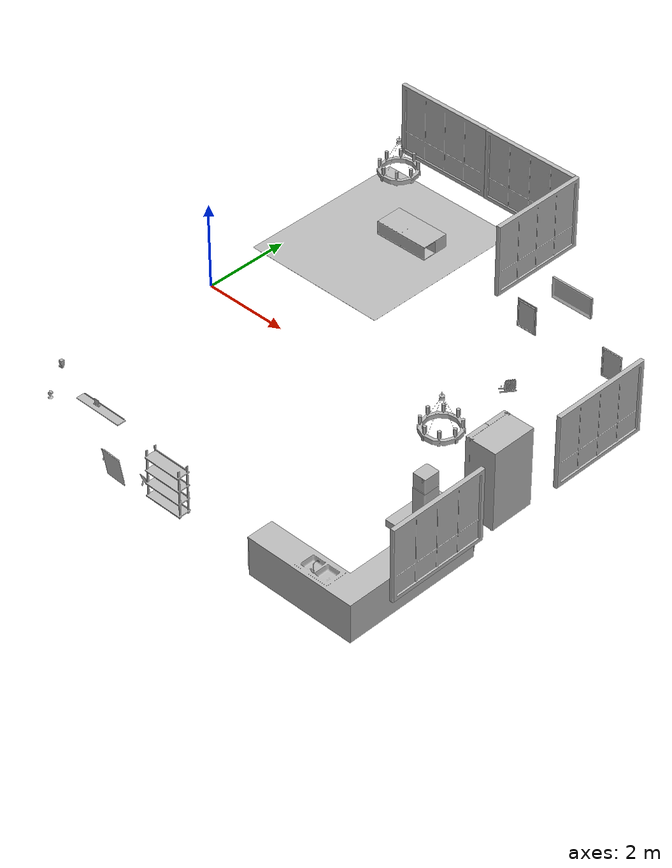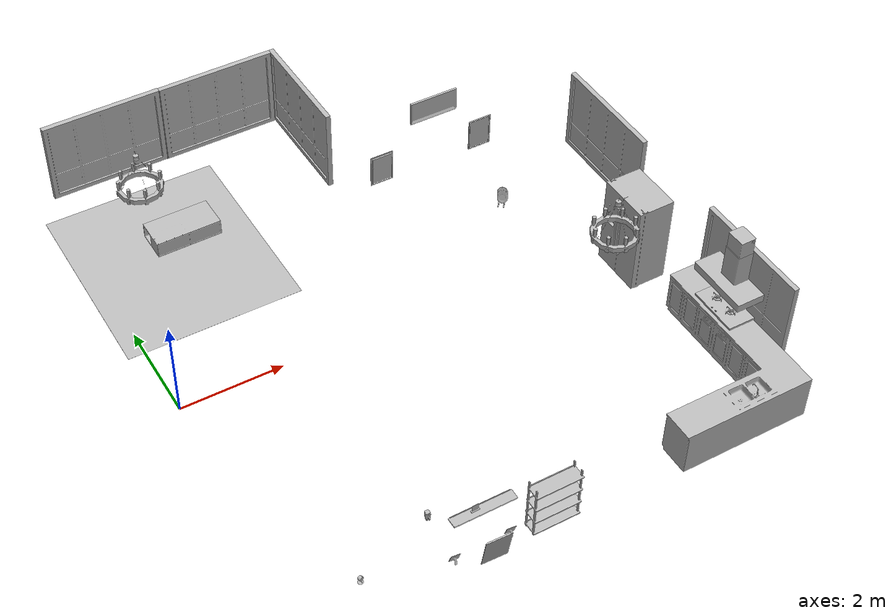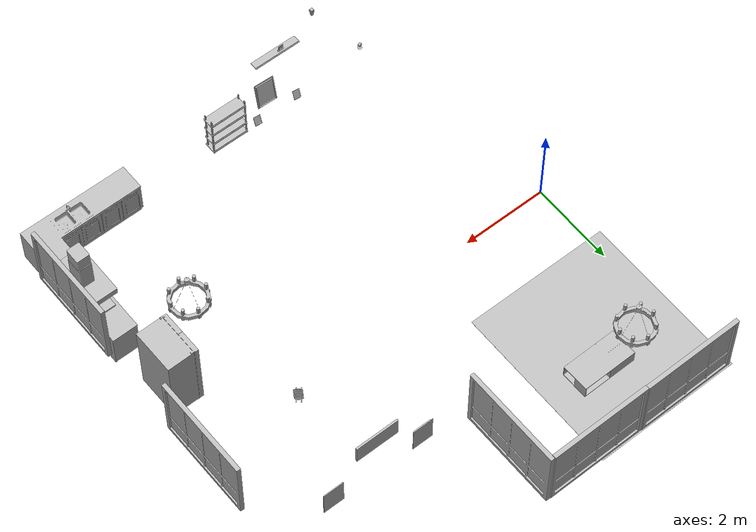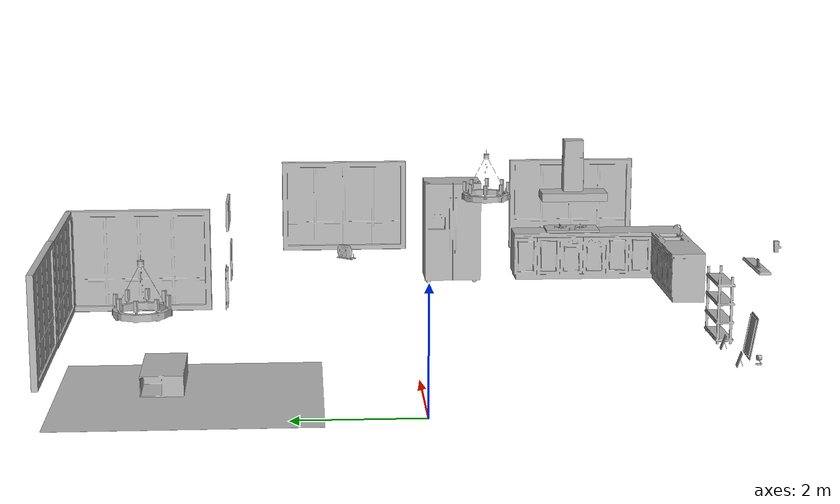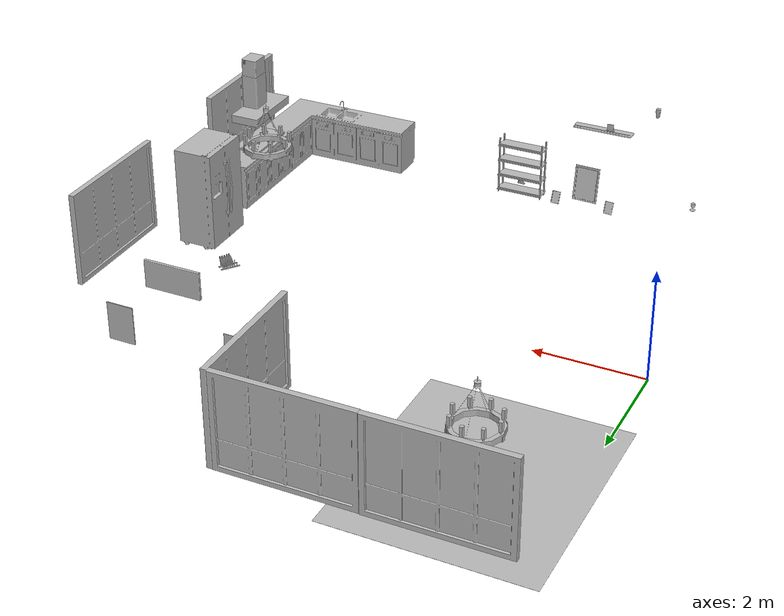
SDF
<sdf version="1.7">
 <world name="default">
  <model name="Board_01_001">
   <static>1</static>
   <frame name="aws_robomaker_residential_Board_01::__model__" attached_to="aws_robomaker_residential_Board_01::link">
    <pose relative_to="__model__">0 0 0 0 -0 0</pose>
   </frame>
   <link name="aws_robomaker_residential_Board_01::link">
    <inertial><mass>1</mass></inertial>
    <collision name="collision">
     <geometry>
      <mesh>
       <uri>model://aws_robomaker_residential_Board_01/meshes/aws_Board_01_collision.DAE</uri>
       <scale>1 1 1</scale>
      </mesh>
     </geometry>
    </collision>
    <visual name="visual">
     <geometry>
      <mesh><uri>model://aws_robomaker_residential_Board_01/meshes/aws_Board_01_visual.DAE</uri></mesh>
     </geometry>
     <meta><layer>2</layer></meta>
    </visual>
    <pose relative_to="aws_robomaker_residential_Board_01::__model__">0 0 0 0 -0 0</pose>
   </link>
   <static>1</static>
   <pose>2.77907 -5.3927 1.53817 0 -0 0</pose>
  </model>
  <model name="Chandelier_01_001">
   <static>1</static>
   <frame name="aws_robomaker_residential_Chandelier_01::__model__" attached_to="aws_robomaker_residential_Chandelier_01::link">
    <pose relative_to="__model__">0 0 0 0 -0 0</pose>
   </frame>
   <link name="aws_robomaker_residential_Chandelier_01::link">
    <inertial><mass>1</mass></inertial>
    <collision name="collision">
     <geometry>
      <mesh>
       <uri>model://aws_robomaker_residential_Chandelier_01/meshes/aws_Chandelier_01_collision.DAE</uri>
       <scale>1 1 1</scale>
      </mesh>
     </geometry>
    </collision>
    <visual name="visual">
     <geometry>
      <mesh><uri>model://aws_robomaker_residential_Chandelier_01/meshes/aws_Chandelier_01_visual.DAE</uri></mesh>
     </geometry>
     <meta><layer>2</layer></meta>
    </visual>
    <pose relative_to="aws_robomaker_residential_Chandelier_01::__model__">0 0 0 0 -0 0</pose>
   </link>
   <static>1</static>
   <pose>1.22106 4.15574 1.295 0 -0 0</pose>
  </model>
  <model name="Chandelier_01_003">
   <static>1</static>
   <frame name="aws_robomaker_residential_Chandelier_01::__model__" attached_to="aws_robomaker_residential_Chandelier_01::link">
    <pose relative_to="__model__">0 0 0 0 -0 0</pose>
   </frame>
   <link name="aws_robomaker_residential_Chandelier_01::link">
    <inertial><mass>1</mass></inertial>
    <collision name="collision">
     <geometry>
      <mesh>
       <uri>model://aws_robomaker_residential_Chandelier_01/meshes/aws_Chandelier_01_collision.DAE</uri>
       <scale>1 1 1</scale>
      </mesh>
     </geometry>
    </collision>
    <visual name="visual">
     <geometry>
      <mesh><uri>model://aws_robomaker_residential_Chandelier_01/meshes/aws_Chandelier_01_visual.DAE</uri></mesh>
     </geometry>
     <meta><layer>2</layer></meta>
    </visual>
    <pose relative_to="aws_robomaker_residential_Chandelier_01::__model__">0 0 0 0 -0 0</pose>
   </link>
   <static>1</static>
   <pose>7.82406 -1.59 1.751 0 -0 0</pose>
  </model>
  <model name="Carpet_01_001">
   <static>1</static>
   <frame name="aws_robomaker_residential_Carpet_01::__model__" attached_to="aws_robomaker_residential_Carpet_01::link">
    <pose relative_to="__model__">0 0 0 0 -0 0</pose>
   </frame>
   <link name="aws_robomaker_residential_Carpet_01::link">
    <inertial><mass>8.1</mass></inertial>
    <collision name="collision">
     <geometry>
      <mesh>
       <uri>model://aws_robomaker_residential_Carpet_01/meshes/aws_Carpet_01_collision.DAE</uri>
       <scale>1 1 0.95</scale>
      </mesh>
     </geometry>
     <surface><friction><ode><mu>100</mu><mu2>50</mu2></ode></friction></surface>
     <pose>0 0 -0.01 0 -0 0</pose>
    </collision>
    <visual name="visual">
     <geometry>
      <mesh><uri>model://aws_robomaker_residential_Carpet_01/meshes/aws_Carpet_01_visual.DAE</uri></mesh>
     </geometry>
     <meta><layer>1</layer></meta>
    </visual>
    <pose relative_to="aws_robomaker_residential_Carpet_01::__model__">0 0 0 0 -0 0</pose>
   </link>
   <static>1</static>
   <pose>1.40733 3.50225 0.001106 0 -0 0</pose>
  </model>
  <model name="SecurityCamera_01_001">
   <static>1</static>
   <frame name="aws_robomaker_residential_SecurityCamera_01::__model__" attached_to="aws_robomaker_residential_SecurityCamera_01::link">
    <pose relative_to="__model__">0 0 0 0 -0 0</pose>
   </frame>
   <link name="aws_robomaker_residential_SecurityCamera_01::link">
    <inertial>
     <mass>1</mass>
     <inertia>
      <ixx>18.2222</ixx>
      <ixy>0</ixy>
      <ixz>0</ixz>
      <iyy>18.2222</iyy>
      <iyz>0</iyz>
      <izz>0.0018767</izz>
     </inertia>
    </inertial>
    <collision name="collision">
     <geometry>
      <mesh>
       <uri>model://aws_robomaker_residential_SecurityCamera_01/meshes/aws_SecurityCamera_01_collision.DAE</uri>
       <scale>1 1 1</scale>
      </mesh>
     </geometry>
    </collision>
    <visual name="visual">
     <geometry>
      <mesh>
       <uri>model://aws_robomaker_residential_SecurityCamera_01/meshes/aws_SecurityCamera_01_visual.DAE</uri>
      </mesh>
     </geometry>
     <meta><layer>2</layer></meta>
    </visual>
    <pose relative_to="aws_robomaker_residential_SecurityCamera_01::__model__">0 0 0 0 -0 0</pose>
   </link>
   <pose>0.842134 -4.99629 0.495067 0 0 -2.84104</pose>
  </model>
  <model name="CoffeeTable_01_001">
   <static>1</static>
   <frame name="aws_robomaker_residential_CoffeeTable_01::__model__" attached_to="aws_robomaker_residential_CoffeeTable_01::link">
    <pose relative_to="__model__">0 0 0 0 -0 0</pose>
   </frame>
   <link name="aws_robomaker_residential_CoffeeTable_01::link">
    <inertial>
     <mass>21.7</mass>
     <inertia><ixx>0.81375</ixx><ixy>0</ixy><ixz>0</ixz><iyy>2.76675</iyy><iyz>0</iyz><izz>3.254</izz></inertia>
    </inertial>
    <collision name="collision">
     <geometry>
      <mesh>
       <uri>model://aws_robomaker_residential_CoffeeTable_01/meshes/aws_CoffeeTable_01_collision.DAE</uri>
       <scale>1 1 1</scale>
      </mesh>
     </geometry>
     <surface><contact><ode><max_vel>0.01</max_vel></ode></contact></surface>
    </collision>
    <visual name="visual">
     <geometry>
      <mesh><uri>model://aws_robomaker_residential_CoffeeTable_01/meshes/aws_CoffeeTable_01_visual.DAE</uri></mesh>
     </geometry>
     <meta><layer>1</layer></meta>
    </visual>
    <pose relative_to="aws_robomaker_residential_CoffeeTable_01::__model__">0 0 0 0 -0 0</pose>
   </link>
   <static>1</static>
   <pose>1.83764 3.90215 0.041983 0 -0 0.01</pose>
  </model>
  <model name="CookingBench_01_001">
   <frame name="aws_robomaker_residential_CookingBench_01::__model__" attached_to="aws_robomaker_residential_CookingBench_01::link">
    <pose relative_to="__model__">0 0 0 0 -0 0</pose>
   </frame>
   <link name="aws_robomaker_residential_CookingBench_01::link">
    <inertial><mass>1</mass></inertial>
    <collision name="collision">
     <geometry>
      <mesh>
       <uri>model://aws_robomaker_residential_CookingBench_01/meshes/aws_CookingBench_01_collision.DAE</uri>
       <scale>1 1 1</scale>
      </mesh>
     </geometry>
    </collision>
    <visual name="visual">
     <geometry>
      <mesh>
       <uri>model://aws_robomaker_residential_CookingBench_01/meshes/aws_CookingBench_01_visual.DAE</uri>
      </mesh>
     </geometry>
     <meta><layer>1</layer></meta>
    </visual>
    <pose relative_to="aws_robomaker_residential_CookingBench_01::__model__">0 0 0 0 -0 0</pose>
   </link>
   <pose>9.03838 -3.35114 0.90361 0 -0 3.13713</pose>
   <static>1</static>
  </model>
  <model name="KitchenCabinet_01_001">
   <static>1</static>
   <frame name="aws_robomaker_residential_KitchenCabinet_01::__model__" attached_to="aws_robomaker_residential_KitchenCabinet_01::link">
    <pose relative_to="__model__">0 0 0 0 -0 0</pose>
   </frame>
   <link name="aws_robomaker_residential_KitchenCabinet_01::link">
    <inertial><mass>1</mass></inertial>
    <collision name="collision">
     <geometry>
      <mesh>
       <uri>model://aws_robomaker_residential_KitchenCabinet_01/meshes/aws_KitchenCabinet_01_collision.DAE</uri>
       <scale>1 1 1</scale>
      </mesh>
     </geometry>
    </collision>
    <visual name="visual">
     <geometry>
      <mesh>
       <uri>model://aws_robomaker_residential_KitchenCabinet_01/meshes/aws_KitchenCabinet_01_visual.DAE</uri>
      </mesh>
     </geometry>
     <meta><layer>1</layer></meta>
    </visual>
    <pose relative_to="aws_robomaker_residential_KitchenCabinet_01::__model__">0 0 0 0 -0 0</pose>
   </link>
   <static>1</static>
   <pose>8.00201 -3.83651 0.012068 0 0 -3.14</pose>
  </model>
  <model name="LightC_01_001">
   <static>1</static>
   <frame name="aws_robomaker_residential_LightC_01::__model__" attached_to="aws_robomaker_residential_LightC_01::link">
    <pose relative_to="__model__">0 0 0 0 -0 0</pose>
   </frame>
   <link name="aws_robomaker_residential_LightC_01::link">
    <inertial><mass>1</mass></inertial>
    <collision name="collision">
     <geometry>
      <mesh>
       <uri>model://aws_robomaker_residential_LightC_01/meshes/aws_LightC_01_collision.DAE</uri>
       <scale>1 1 1</scale>
      </mesh>
     </geometry>
    </collision>
    <visual name="visual">
     <geometry>
      <mesh><uri>model://aws_robomaker_residential_LightC_01/meshes/aws_LightC_01_visual.DAE</uri></mesh>
     </geometry>
     <meta><layer>2</layer></meta>
    </visual>
    <pose relative_to="aws_robomaker_residential_LightC_01::__model__">0 0 0 0 -0 0</pose>
   </link>
   <static>1</static>
   <pose>1.76957 -5.44437 2 0 -0 0</pose>
  </model>
  <model name="PortraitB_02">
   <static>1</static>
   <frame name="aws_robomaker_residential_PortraitB_02::__model__" attached_to="aws_robomaker_residential_PortraitB_02::link">
    <pose relative_to="__model__">0 0 0 0 -0 0</pose>
   </frame>
   <link name="aws_robomaker_residential_PortraitB_02::link">
    <inertial><mass>1</mass></inertial>
    <collision name="collision">
     <geometry>
      <mesh>
       <uri>model://aws_robomaker_residential_PortraitB_02/meshes/aws_PortraitB_01_collision.DAE</uri>
       <scale>1 1 1</scale>
      </mesh>
     </geometry>
    </collision>
    <visual name="visual">
     <geometry>
      <mesh><uri>model://aws_robomaker_residential_PortraitB_02/meshes/aws_PortraitB_01_visual.DAE</uri></mesh>
     </geometry>
     <meta><layer>2</layer></meta>
    </visual>
    <pose relative_to="aws_robomaker_residential_PortraitB_02::__model__">0 0 0 0 -0 0</pose>
   </link>
   <static>1</static>
   <pose>5.73702 3.08031 0.3 0 -0 0</pose>
  </model>
  <model name="PortraitB_03">
   <static>1</static>
   <frame name="aws_robomaker_residential_PortraitB_03::__model__" attached_to="aws_robomaker_residential_PortraitB_03::link">
    <pose relative_to="__model__">0 0 0 0 -0 0</pose>
   </frame>
   <link name="aws_robomaker_residential_PortraitB_03::link">
    <inertial><mass>1</mass></inertial>
    <collision name="collision">
     <geometry>
      <mesh>
       <uri>model://aws_robomaker_residential_PortraitB_03/meshes/aws_PortraitB_01_collision.DAE</uri>
       <scale>1 1 1</scale>
      </mesh>
     </geometry>
    </collision>
    <visual name="visual">
     <geometry>
      <mesh><uri>model://aws_robomaker_residential_PortraitB_03/meshes/aws_PortraitB_01_visual.DAE</uri></mesh>
     </geometry>
     <meta><layer>2</layer></meta>
    </visual>
    <pose relative_to="aws_robomaker_residential_PortraitB_03::__model__">0 0 0 0 -0 0</pose>
   </link>
   <static>1</static>
   <pose>3.07138 -5.34937 0.005494 -0.168428 -0 3.10423</pose>
  </model>
  <model name="PortraitA_02">
   <static>1</static>
   <frame name="aws_robomaker_residential_PortraitA_02::__model__" attached_to="aws_robomaker_residential_PortraitA_02::link">
    <pose relative_to="__model__">0 0 0 0 -0 0</pose>
   </frame>
   <link name="aws_robomaker_residential_PortraitA_02::link">
    <inertial><mass>1</mass></inertial>
    <collision name="collision">
     <geometry>
      <mesh>
       <uri>model://aws_robomaker_residential_PortraitA_02/meshes/aws_PortraitA_01_collision.DAE</uri>
       <scale>1 1 1</scale>
      </mesh>
     </geometry>
    </collision>
    <visual name="visual">
     <geometry>
      <mesh><uri>model://aws_robomaker_residential_PortraitA_02/meshes/aws_PortraitA_01_visual.DAE</uri></mesh>
     </geometry>
     <meta><layer>2</layer></meta>
    </visual>
    <pose relative_to="aws_robomaker_residential_PortraitA_02::__model__">0 0 0 0 -0 0</pose>
   </link>
   <static>1</static>
   <pose>7.93702 3.08031 0.3 0 -0 3.14</pose>
  </model>
  <model name="PortraitD_02">
   <static>1</static>
   <frame name="aws_robomaker_residential_PortraitD_02::__model__" attached_to="aws_robomaker_residential_PortraitD_02::link">
    <pose relative_to="__model__">0 0 0 0 -0 0</pose>
   </frame>
   <link name="aws_robomaker_residential_PortraitD_02::link">
    <inertial><mass>1.5</mass></inertial>
    <collision name="collision">
     <geometry>
      <mesh>
       <uri>model://aws_robomaker_residential_PortraitD_02/meshes/aws_PortraitD_01_collision.DAE</uri>
       <scale>1 1 1</scale>
      </mesh>
     </geometry>
    </collision>
    <visual name="visual">
     <geometry>
      <mesh><uri>model://aws_robomaker_residential_PortraitD_02/meshes/aws_PortraitD_01_visual.DAE</uri></mesh>
     </geometry>
     <meta><layer>2</layer></meta>
    </visual>
    <pose relative_to="aws_robomaker_residential_PortraitD_02::__model__">0 0 0 0 -0 0</pose>
   </link>
   <static>1</static>
   <pose>6.87018 3.08031 1.48844 0 -0 0</pose>
  </model>
  <model name="DeskPortraitD_01">
   <static>1</static>
   <frame name="aws_robomaker_residential_DeskPortraitD_01::__model__" attached_to="aws_robomaker_residential_DeskPortraitD_01::link">
    <pose relative_to="__model__">0 0 0 0 -0 0</pose>
   </frame>
   <link name="aws_robomaker_residential_DeskPortraitD_01::link">
    <inertial>
     <mass>0.4</mass>
     <inertia><ixx>0.0616</ixx><ixy>0</ixy><ixz>0</ixz><iyy>0.1313</iyy><iyz>0</iyz><izz>0.0803</izz></inertia>
    </inertial>
    <collision name="collision">
     <geometry>
      <mesh>
       <uri>model://aws_robomaker_residential_DeskPortraitD_01/meshes/aws_DeskPortraitD_01_collision.DAE</uri>
       <scale>1 1 1</scale>
      </mesh>
     </geometry>
     <surface>
      <friction><ode><mu>0.7</mu><mu2>0.7</mu2></ode></friction>
      <contact><ode><kd>28500</kd></ode></contact>
     </surface>
    </collision>
    <visual name="visual">
     <geometry>
      <mesh>
       <uri>model://aws_robomaker_residential_DeskPortraitD_01/meshes/aws_DeskPortraitD_01_visual.DAE</uri>
      </mesh>
     </geometry>
     <meta><layer>1</layer></meta>
    </visual>
    <pose relative_to="aws_robomaker_residential_DeskPortraitD_01::__model__">0 0 0 0 -0 0</pose>
   </link>
   <pose>2.64556 -5.37622 1.57374 0 0 -3.11283</pose>
  </model>
  <model name="DeskPortraitD_04">
   <static>1</static>
   <frame name="aws_robomaker_residential_DeskPortraitD_04::__model__" attached_to="aws_robomaker_residential_DeskPortraitD_04::link">
    <pose relative_to="__model__">0 0 0 0 -0 0</pose>
   </frame>
   <link name="aws_robomaker_residential_DeskPortraitD_04::link">
    <inertial>
     <mass>0.4</mass>
     <inertia><ixx>0.0616</ixx><ixy>0</ixy><ixz>0</ixz><iyy>0.1313</iyy><iyz>0</iyz><izz>0.0803</izz></inertia>
    </inertial>
    <collision name="collision">
     <geometry>
      <mesh>
       <uri>model://aws_robomaker_residential_DeskPortraitD_04/meshes/aws_DeskPortraitD_01_collision.DAE</uri>
       <scale>1 1 1</scale>
      </mesh>
     </geometry>
     <surface>
      <friction><ode><mu>0.7</mu><mu2>0.7</mu2></ode></friction>
      <contact><ode><kd>28500</kd></ode></contact>
     </surface>
    </collision>
    <visual name="visual">
     <geometry>
      <mesh>
       <uri>model://aws_robomaker_residential_DeskPortraitD_04/meshes/aws_DeskPortraitD_01_visual.DAE</uri>
      </mesh>
     </geometry>
     <meta><layer>1</layer></meta>
    </visual>
    <pose relative_to="aws_robomaker_residential_DeskPortraitD_04::__model__">0 0 0 0 -0 0</pose>
   </link>
   <pose>4.30213 -5.17657 0.202496 0.007118 -1e-06 3.04668</pose>
  </model>
  <model name="DeskPortraitB_01">
   <static>1</static>
   <frame name="aws_robomaker_residential_DeskPortraitB_01::__model__" attached_to="aws_robomaker_residential_DeskPortraitB_01::link">
    <pose relative_to="__model__">0 0 0 0 -0 0</pose>
   </frame>
   <link name="aws_robomaker_residential_DeskPortraitB_01::link">
    <inertial>
     <mass>1</mass>
     <inertia><ixx>0.0135</ixx><ixy>0</ixy><ixz>0</ixz><iyy>0.02</iyy><iyz>0</iyz><izz>0.01347</izz></inertia>
    </inertial>
    <collision name="collision">
     <geometry>
      <mesh>
       <uri>model://aws_robomaker_residential_DeskPortraitB_01/meshes/aws_DeskPortraitB_01_collision.DAE</uri>
       <scale>1 1 1</scale>
      </mesh>
     </geometry>
    </collision>
    <visual name="visual">
     <geometry>
      <mesh>
       <uri>model://aws_robomaker_residential_DeskPortraitB_01/meshes/aws_DeskPortraitB_01_visual.DAE</uri>
      </mesh>
     </geometry>
     <meta><layer>1</layer></meta>
    </visual>
    <pose relative_to="aws_robomaker_residential_DeskPortraitB_01::__model__">0 0 0 0 -0 0</pose>
   </link>
   <pose>3.54738 -5.0839 -0.01266 -0.336622 -1e-06 3.04674</pose>
  </model>
  <model name="DeskPortraitB_02">
   <static>1</static>
   <frame name="aws_robomaker_residential_DeskPortraitB_02::__model__" attached_to="aws_robomaker_residential_DeskPortraitB_02::link">
    <pose relative_to="__model__">0 0 0 0 -0 0</pose>
   </frame>
   <link name="aws_robomaker_residential_DeskPortraitB_02::link">
    <inertial>
     <mass>1</mass>
     <inertia><ixx>0.0135</ixx><ixy>0</ixy><ixz>0</ixz><iyy>0.02</iyy><iyz>0</iyz><izz>0.01347</izz></inertia>
    </inertial>
    <collision name="collision">
     <geometry>
      <mesh>
       <uri>model://aws_robomaker_residential_DeskPortraitB_02/meshes/aws_DeskPortraitB_01_collision.DAE</uri>
       <scale>1 1 1</scale>
      </mesh>
     </geometry>
    </collision>
    <visual name="visual">
     <geometry>
      <mesh>
       <uri>model://aws_robomaker_residential_DeskPortraitB_02/meshes/aws_DeskPortraitB_01_visual.DAE</uri>
      </mesh>
     </geometry>
     <meta><layer>1</layer></meta>
    </visual>
    <pose relative_to="aws_robomaker_residential_DeskPortraitB_02::__model__">0 0 0 0 -0 0</pose>
   </link>
   <pose>2.48627 -5.10252 -0.01266 -0.336621 0 3.0468</pose>
  </model>
  <model name="Rangehood_01_001">
   <static>1</static>
   <frame name="aws_robomaker_residential_Rangehood_01::__model__" attached_to="aws_robomaker_residential_Rangehood_01::link">
    <pose relative_to="__model__">0 0 0 0 -0 0</pose>
   </frame>
   <link name="aws_robomaker_residential_Rangehood_01::link">
    <inertial><mass>1</mass></inertial>
    <collision name="collision">
     <geometry>
      <mesh>
       <uri>model://aws_robomaker_residential_Rangehood_01/meshes/aws_Rangehood_01_collision.DAE</uri>
       <scale>1 1 1</scale>
      </mesh>
     </geometry>
    </collision>
    <visual name="visual">
     <geometry>
      <mesh><uri>model://aws_robomaker_residential_Rangehood_01/meshes/aws_Rangehood_01_visual.DAE</uri></mesh>
     </geometry>
     <meta><layer>2</layer></meta>
    </visual>
    <pose relative_to="aws_robomaker_residential_Rangehood_01::__model__">0 0 0 0 -0 0</pose>
   </link>
   <static>1</static>
   <pose>9.01979 -3.36994 1.50761 0 -0 0</pose>
  </model>
  <model name="Refrigerator_01_001">
   <static>1</static>
   <frame name="aws_robomaker_residential_Refrigerator_01::__model__" attached_to="aws_robomaker_residential_Refrigerator_01::link">
    <pose relative_to="__model__">0 0 0 0 -0 0</pose>
   </frame>
   <link name="aws_robomaker_residential_Refrigerator_01::link">
    <inertial><mass>1</mass></inertial>
    <collision name="collision">
     <geometry>
      <mesh>
       <uri>model://aws_robomaker_residential_Refrigerator_01/meshes/aws_Refrigerator_01_collision.DAE</uri>
       <scale>1 1 1</scale>
      </mesh>
     </geometry>
    </collision>
    <visual name="visual">
     <geometry>
      <mesh>
       <uri>model://aws_robomaker_residential_Refrigerator_01/meshes/aws_Refrigerator_01_visual.DAE</uri>
      </mesh>
     </geometry>
     <meta><layer>1</layer></meta>
    </visual>
    <pose relative_to="aws_robomaker_residential_Refrigerator_01::__model__">0 0 0 0 -0 0</pose>
   </link>
   <static>1</static>
   <pose>8.70273 -1.03203 0 0 0 -1.5635</pose>
  </model>
  <model name="ShoeRack_01_001">
   <static>1</static>
   <frame name="aws_robomaker_residential_ShoeRack_01::__model__" attached_to="aws_robomaker_residential_ShoeRack_01::link">
    <pose relative_to="__model__">0 0 0 0 -0 0</pose>
   </frame>
   <link name="aws_robomaker_residential_ShoeRack_01::link">
    <inertial>
     <mass>6</mass>
     <inertia>
      <ixx>0.02</ixx>
      <ixy>0</ixy>
      <ixz>0</ixz>
      <iyy>0.04</iyy>
      <iyz>0</iyz>
      <ixx>0.02</ixx>
      <izz>1</izz>
     </inertia>
    </inertial>
    <collision name="collision">
     <geometry>
      <mesh>
       <uri>model://aws_robomaker_residential_ShoeRack_01/meshes/aws_ShoeRack_01_collision.DAE</uri>
       <scale>1 1 1</scale>
      </mesh>
     </geometry>
     <surface>
      <friction><ode><mu>0.2</mu><mu2>0.2</mu2></ode></friction>
      <contact><ode><kd>2500</kd></ode></contact>
     </surface>
    </collision>
    <visual name="visual">
     <geometry>
      <mesh><uri>model://aws_robomaker_residential_ShoeRack_01/meshes/aws_ShoeRack_01_visual.DAE</uri></mesh>
     </geometry>
     <meta><layer>1</layer></meta>
    </visual>
    <pose relative_to="aws_robomaker_residential_ShoeRack_01::__model__">0 0 0 0 -0 0</pose>
   </link>
   <pose>4.29798 -5.17357 0 0 -0 0</pose>
  </model>
  <model name="Tableware_01_001">
   <static>1</static>
   <frame name="aws_robomaker_residential_Tableware_01::__model__" attached_to="aws_robomaker_residential_Tableware_01::link">
    <pose relative_to="__model__">0 0 0 0 -0 0</pose>
   </frame>
   <link name="aws_robomaker_residential_Tableware_01::link">
    <inertial><mass>1</mass></inertial>
    <collision name="collision">
     <geometry>
      <mesh>
       <uri>model://aws_robomaker_residential_Tableware_01/meshes/aws_Tableware_01_collision.DAE</uri>
       <scale>1 1 1</scale>
      </mesh>
     </geometry>
    </collision>
    <visual name="visual">
     <geometry>
      <mesh><uri>model://aws_robomaker_residential_Tableware_01/meshes/aws_Tableware_01_visual.DAE</uri></mesh>
     </geometry>
     <meta><layer>1</layer></meta>
    </visual>
    <pose relative_to="aws_robomaker_residential_Tableware_01::__model__">0 0 0 0 -0 0</pose>
   </link>
   <pose>7.15317 0.982767 0.817812 -0.001238 -0.000976 1.02476</pose>
  </model>
  <model name="RoomWindow_01_003">
   <static>1</static>
   <frame name="aws_robomaker_residential_RoomWindow_01::__model__" attached_to="aws_robomaker_residential_RoomWindow_01::link">
    <pose relative_to="__model__">0 0 0 0 -0 0</pose>
   </frame>
   <link name="aws_robomaker_residential_RoomWindow_01::link">
    <inertial><mass>1</mass></inertial>
    <collision name="collision">
     <geometry>
      <mesh>
       <uri>model://aws_robomaker_residential_RoomWindow_01/meshes/aws_RoomWindow_01_collision.DAE</uri>
       <scale>1 1 1</scale>
      </mesh>
     </geometry>
    </collision>
    <visual name="visual">
     <geometry>
      <mesh><uri>model://aws_robomaker_residential_RoomWindow_01/meshes/aws_RoomWindow_01_visual.DAE</uri></mesh>
     </geometry>
     <meta><layer>2</layer></meta>
    </visual>
    <pose relative_to="aws_robomaker_residential_RoomWindow_01::__model__">0 0 0 0 -0 0</pose>
   </link>
   <static>1</static>
   <pose>9.42262 -3.37398 0.502739 0 0 -3.1361</pose>
  </model>
  <model name="RoomWindow_01_004">
   <static>1</static>
   <frame name="aws_robomaker_residential_RoomWindow_01::__model__" attached_to="aws_robomaker_residential_RoomWindow_01::link">
    <pose relative_to="__model__">0 0 0 0 -0 0</pose>
   </frame>
   <link name="aws_robomaker_residential_RoomWindow_01::link">
    <inertial><mass>1</mass></inertial>
    <collision name="collision">
     <geometry>
      <mesh>
       <uri>model://aws_robomaker_residential_RoomWindow_01/meshes/aws_RoomWindow_01_collision.DAE</uri>
       <scale>1 1 1</scale>
      </mesh>
     </geometry>
    </collision>
    <visual name="visual">
     <geometry>
      <mesh><uri>model://aws_robomaker_residential_RoomWindow_01/meshes/aws_RoomWindow_01_visual.DAE</uri></mesh>
     </geometry>
     <meta><layer>2</layer></meta>
    </visual>
    <pose relative_to="aws_robomaker_residential_RoomWindow_01::__model__">0 0 0 0 -0 0</pose>
   </link>
   <static>1</static>
   <pose>9.42256 0.96852 0.496581 0 0 -3.1361</pose>
  </model>
  <model name="RoomWindow_01_005">
   <static>1</static>
   <frame name="aws_robomaker_residential_RoomWindow_01::__model__" attached_to="aws_robomaker_residential_RoomWindow_01::link">
    <pose relative_to="__model__">0 0 0 0 -0 0</pose>
   </frame>
   <link name="aws_robomaker_residential_RoomWindow_01::link">
    <inertial><mass>1</mass></inertial>
    <collision name="collision">
     <geometry>
      <mesh>
       <uri>model://aws_robomaker_residential_RoomWindow_01/meshes/aws_RoomWindow_01_collision.DAE</uri>
       <scale>1 1 1</scale>
      </mesh>
     </geometry>
    </collision>
    <visual name="visual">
     <geometry>
      <mesh><uri>model://aws_robomaker_residential_RoomWindow_01/meshes/aws_RoomWindow_01_visual.DAE</uri></mesh>
     </geometry>
     <meta><layer>2</layer></meta>
    </visual>
    <pose relative_to="aws_robomaker_residential_RoomWindow_01::__model__">0 0 0 0 -0 0</pose>
   </link>
   <static>1</static>
   <pose>4.72232 4.47028 0.502739 0 0 -3.1361</pose>
  </model>
  <model name="RoomWindow_01_006">
   <static>1</static>
   <frame name="aws_robomaker_residential_RoomWindow_01::__model__" attached_to="aws_robomaker_residential_RoomWindow_01::link">
    <pose relative_to="__model__">0 0 0 0 -0 0</pose>
   </frame>
   <link name="aws_robomaker_residential_RoomWindow_01::link">
    <inertial><mass>1</mass></inertial>
    <collision name="collision">
     <geometry>
      <mesh>
       <uri>model://aws_robomaker_residential_RoomWindow_01/meshes/aws_RoomWindow_01_collision.DAE</uri>
       <scale>1 1 1</scale>
      </mesh>
     </geometry>
    </collision>
    <visual name="visual">
     <geometry>
      <mesh><uri>model://aws_robomaker_residential_RoomWindow_01/meshes/aws_RoomWindow_01_visual.DAE</uri></mesh>
     </geometry>
     <meta><layer>2</layer></meta>
    </visual>
    <pose relative_to="aws_robomaker_residential_RoomWindow_01::__model__">0 0 0 0 -0 0</pose>
   </link>
   <static>1</static>
   <pose>3.48852 5.60069 0.502739 0 0 -1.56627</pose>
  </model>
  <model name="RoomWindow_01_007">
   <static>1</static>
   <frame name="aws_robomaker_residential_RoomWindow_01::__model__" attached_to="aws_robomaker_residential_RoomWindow_01::link">
    <pose relative_to="__model__">0 0 0 0 -0 0</pose>
   </frame>
   <link name="aws_robomaker_residential_RoomWindow_01::link">
    <inertial><mass>1</mass></inertial>
    <collision name="collision">
     <geometry>
      <mesh>
       <uri>model://aws_robomaker_residential_RoomWindow_01/meshes/aws_RoomWindow_01_collision.DAE</uri>
       <scale>1 1 1</scale>
      </mesh>
     </geometry>
    </collision>
    <visual name="visual">
     <geometry>
      <mesh><uri>model://aws_robomaker_residential_RoomWindow_01/meshes/aws_RoomWindow_01_visual.DAE</uri></mesh>
     </geometry>
     <meta><layer>2</layer></meta>
    </visual>
    <pose relative_to="aws_robomaker_residential_RoomWindow_01::__model__">0 0 0 0 -0 0</pose>
   </link>
   <static>1</static>
   <pose>1.14095 5.60069 0.502739 0 0 -1.56627</pose>
  </model>
 </world>
</sdf>
